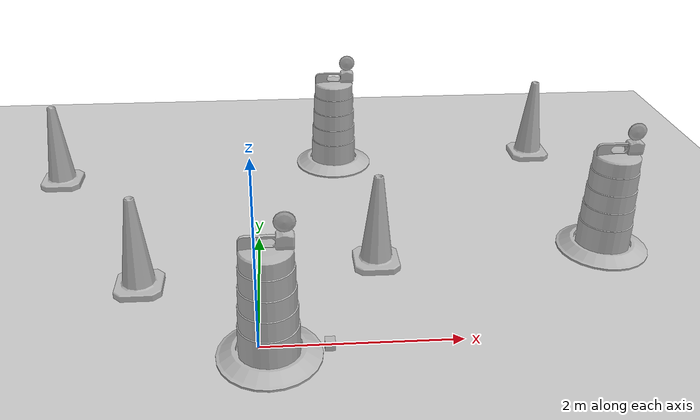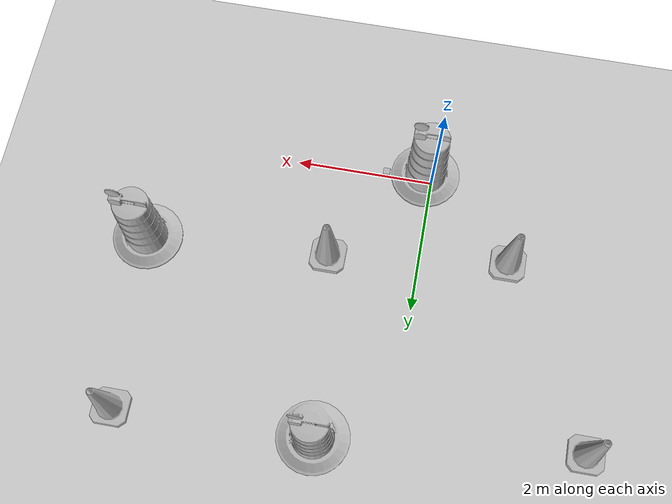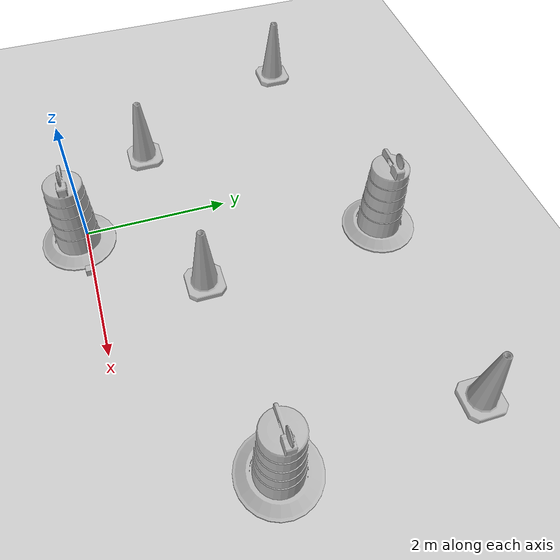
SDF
<sdf version="1.7">
 <world name="default">
  <light name="sun" type="directional">
   <pose>0 0 10 0 -0 0</pose>
   <diffuse>0.8 0.8 0.8 1</diffuse>
   <specular>0.2 0.2 0.2 1</specular>
   <attenuation>
    <range>1000</range>
    <constant>0.9</constant>
    <linear>0.01</linear>
    <quadratic>0.001</quadratic>
   </attenuation>
   <direction>-0.5 0.1 -0.9</direction>
   <spot><inner_angle>0</inner_angle><outer_angle>0</outer_angle><falloff>0</falloff></spot>
  </light>
  <model name="ground_plane">
   <static>1</static>
   <link name="link">
    <collision name="collision">
     <geometry><plane><normal>0 0 1</normal><size>100 100</size></plane></geometry>
     <surface>
      <contact><collide_bitmask>65535</collide_bitmask></contact>
      <friction><ode><mu>100</mu><mu2>50</mu2></ode></friction>
     </surface>
    </collision>
    <visual name="visual">
     <cast_shadows>0</cast_shadows>
     <geometry><plane><normal>0 0 1</normal><size>100 100</size></plane></geometry>
     <material>
      <script><uri>file://media/materials/scripts/gazebo.material</uri><name>Gazebo/Grey</name></script>
     </material>
    </visual>
   </link>
  </model>
  <gravity>0 0 -9.8</gravity>
  <magnetic_field>6e-06 2.3e-05 -4.2e-05</magnetic_field>
  <atmosphere type="adiabatic"/>
  <physics type="ode">
   <max_step_size>0.001</max_step_size>
   <real_time_factor>1</real_time_factor>
   <real_time_update_rate>1000</real_time_update_rate>
  </physics>
  <scene><ambient>0.4 0.4 0.4 1</ambient><background>0.7 0.7 0.7 1</background><shadows>1</shadows></scene>
  <spherical_coordinates>
   <surface_model>EARTH_WGS84</surface_model>
   <latitude_deg>0</latitude_deg>
   <longitude_deg>0</longitude_deg>
   <elevation>0</elevation>
   <heading_deg>0</heading_deg>
  </spherical_coordinates>
  <model name="Construction Barrel">
   <link name="link">
    <inertial>
     <pose>0 0 0.4 0 -0 0</pose>
     <mass>500</mass>
     <inertia><ixx>51.2096</ixx><iyy>51.2096</iyy><izz>25</izz><ixy>0</ixy><ixz>0</ixz><iyz>0</iyz></inertia>
    </inertial>
    <collision name="collision">
     <geometry><mesh><uri>model://construction_barrel/meshes/construction_barrel.dae</uri></mesh></geometry>
    </collision>
    <visual name="visual">
     <geometry><mesh><uri>model://construction_barrel/meshes/construction_barrel.dae</uri></mesh></geometry>
    </visual>
   </link>
   <pose>1.02672 4.01516 -2e-06 1e-06 8e-06 -1.5e-05</pose>
  </model>
  <model name="Construction Cone">
   <link name="link">
    <collision name="collision">
     <geometry>
      <mesh><scale>10 10 10</scale><uri>model://construction_cone/meshes/construction_cone.dae</uri></mesh>
     </geometry>
    </collision>
    <visual name="visual">
     <geometry>
      <mesh><scale>10 10 10</scale><uri>model://construction_cone/meshes/construction_cone.dae</uri></mesh>
     </geometry>
    </visual>
    <inertial>
     <inertia><ixx>1</ixx><ixy>0</ixy><ixz>0</ixz><iyy>1</iyy><iyz>0</iyz><izz>1</izz></inertia>
     <mass>1</mass>
    </inertial>
   </link>
   <pose>1.30354 1.39532 -0 0 -1e-06 0</pose>
  </model>
  <model name="Construction Barrel_0">
   <link name="link">
    <inertial>
     <pose>0 0 0.4 0 -0 0</pose>
     <mass>500</mass>
     <inertia><ixx>51.2096</ixx><iyy>51.2096</iyy><izz>25</izz><ixy>0</ixy><ixz>0</ixz><iyz>0</iyz></inertia>
    </inertial>
    <collision name="collision">
     <geometry><mesh><uri>model://construction_barrel/meshes/construction_barrel.dae</uri></mesh></geometry>
    </collision>
    <visual name="visual">
     <geometry><mesh><uri>model://construction_barrel/meshes/construction_barrel.dae</uri></mesh></geometry>
    </visual>
   </link>
   <pose>0.106018 -0.117763 -2e-06 6e-06 -4e-06 -1.2e-05</pose>
  </model>
  <model name="depth_camera">
   <link name="link">
    <pose>0 0 0.05 0 -0 0</pose>
    <inertial>
     <mass>0.1</mass>
     <inertia>
      <ixx>0.000166667</ixx>
      <iyy>0.000166667</iyy>
      <izz>0.000166667</izz>
      <ixy>0</ixy>
      <ixz>0</ixz>
      <iyz>0</iyz>
     </inertia>
    </inertial>
    <collision name="collision"><geometry><box><size>0.1 0.1 0.1</size></box></geometry></collision>
    <visual name="visual"><geometry><box><size>0.1 0.1 0.1</size></box></geometry></visual>
    <sensor name="camera" type="depth">
     <camera>
      <horizontal_fov>1.047</horizontal_fov>
      <image><width>320</width><height>240</height></image>
      <clip><near>0.1</near><far>100</far></clip>
     </camera>
     <always_on>1</always_on>
     <update_rate>30</update_rate>
     <visualize>1</visualize>
    </sensor>
   </link>
   <pose>0.682391 -0.046862 -8e-06 -7e-06 3.1e-05 0</pose>
  </model>
  <model name="Construction Cone_0">
   <link name="link">
    <collision name="collision">
     <geometry>
      <mesh><scale>10 10 10</scale><uri>model://construction_cone/meshes/construction_cone.dae</uri></mesh>
     </geometry>
    </collision>
    <visual name="visual">
     <geometry>
      <mesh><scale>10 10 10</scale><uri>model://construction_cone/meshes/construction_cone.dae</uri></mesh>
     </geometry>
    </visual>
    <inertial>
     <inertia><ixx>1</ixx><ixy>0</ixy><ixz>0</ixz><iyy>1</iyy><iyz>0</iyz><izz>1</izz></inertia>
     <mass>1</mass>
    </inertial>
   </link>
   <pose>3.82306 4.09421 -1e-05 0 -0 0</pose>
  </model>
  <model name="Construction Barrel_1">
   <link name="link">
    <inertial>
     <pose>0 0 0.4 0 -0 0</pose>
     <mass>500</mass>
     <inertia><ixx>51.2096</ixx><iyy>51.2096</iyy><izz>25</izz><ixy>0</ixy><ixz>0</ixz><iyz>0</iyz></inertia>
    </inertial>
    <collision name="collision">
     <geometry><mesh><uri>model://construction_barrel/meshes/construction_barrel.dae</uri></mesh></geometry>
    </collision>
    <visual name="visual">
     <geometry><mesh><uri>model://construction_barrel/meshes/construction_barrel.dae</uri></mesh></geometry>
    </visual>
   </link>
   <pose>3.94666 1.55612 -0 0 -0 -9e-06</pose>
  </model>
  <model name="Construction Cone_1">
   <link name="link">
    <collision name="collision">
     <geometry>
      <mesh><scale>10 10 10</scale><uri>model://construction_cone/meshes/construction_cone.dae</uri></mesh>
     </geometry>
    </collision>
    <visual name="visual">
     <geometry>
      <mesh><scale>10 10 10</scale><uri>model://construction_cone/meshes/construction_cone.dae</uri></mesh>
     </geometry>
    </visual>
    <inertial>
     <inertia><ixx>1</ixx><ixy>0</ixy><ixz>0</ixz><iyy>1</iyy><iyz>0</iyz><izz>1</izz></inertia>
     <mass>1</mass>
    </inertial>
   </link>
   <pose>-1.26913 1.07424 0 -0 -0 -0</pose>
  </model>
  <model name="Construction Cone_2">
   <link name="link">
    <collision name="collision">
     <geometry>
      <mesh><scale>10 10 10</scale><uri>model://construction_cone/meshes/construction_cone.dae</uri></mesh>
     </geometry>
    </collision>
    <visual name="visual">
     <geometry>
      <mesh><scale>10 10 10</scale><uri>model://construction_cone/meshes/construction_cone.dae</uri></mesh>
     </geometry>
    </visual>
    <inertial>
     <inertia><ixx>1</ixx><ixy>0</ixy><ixz>0</ixz><iyy>1</iyy><iyz>0</iyz><izz>1</izz></inertia>
     <mass>1</mass>
    </inertial>
   </link>
   <pose>-2.62685 3.60364 -0 0 -0 0</pose>
  </model>
 </world>
</sdf>
